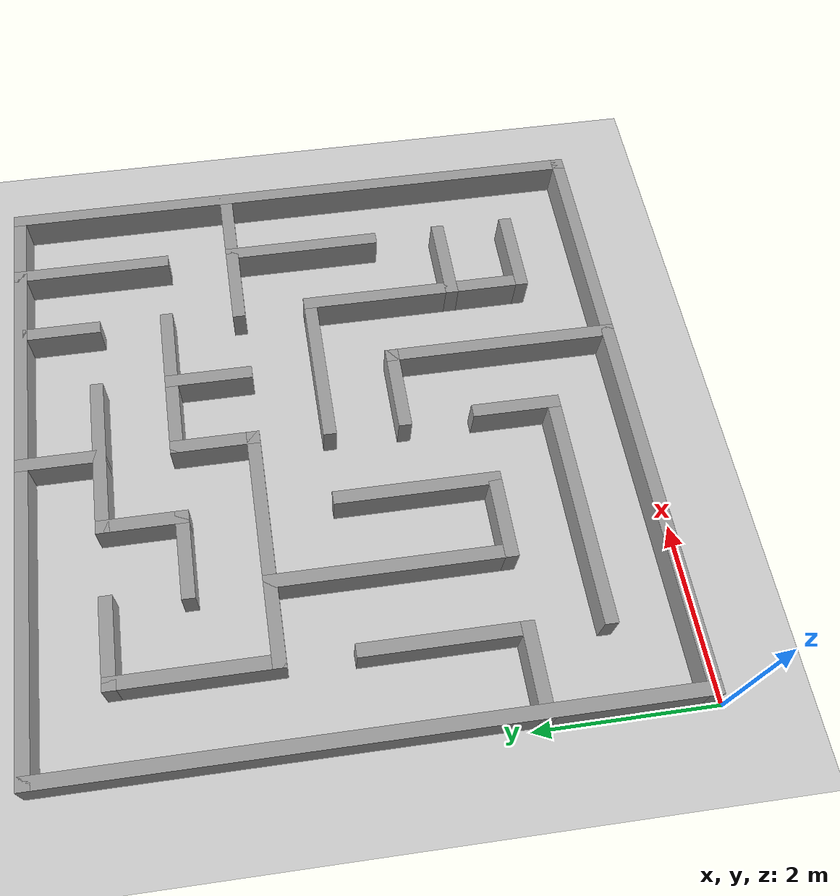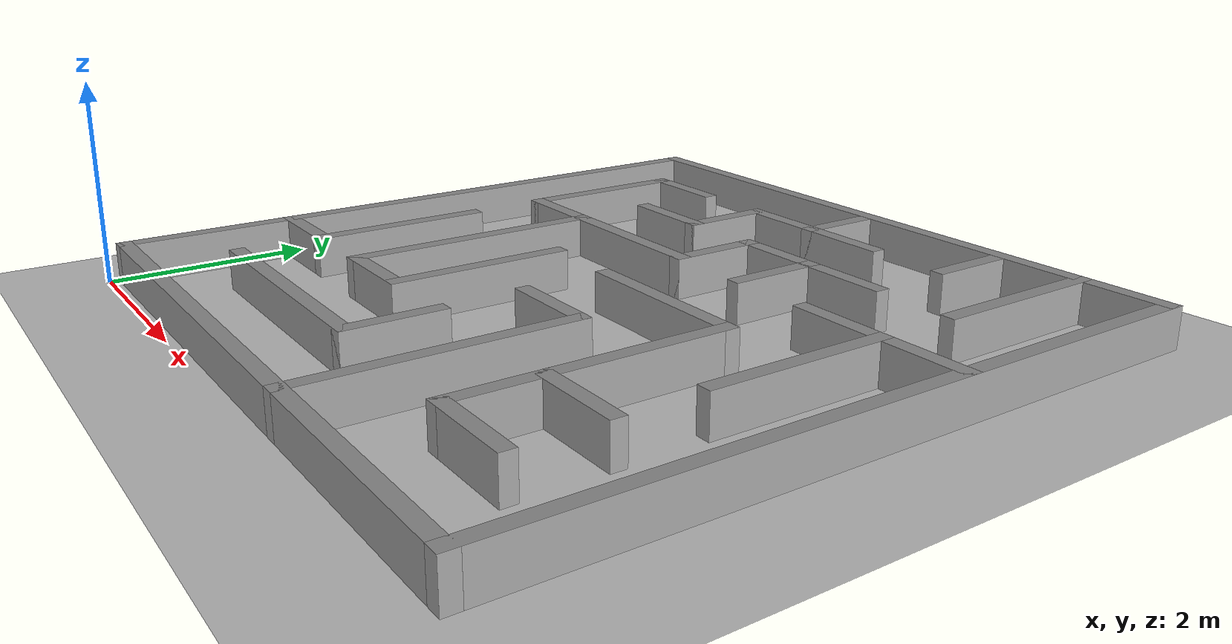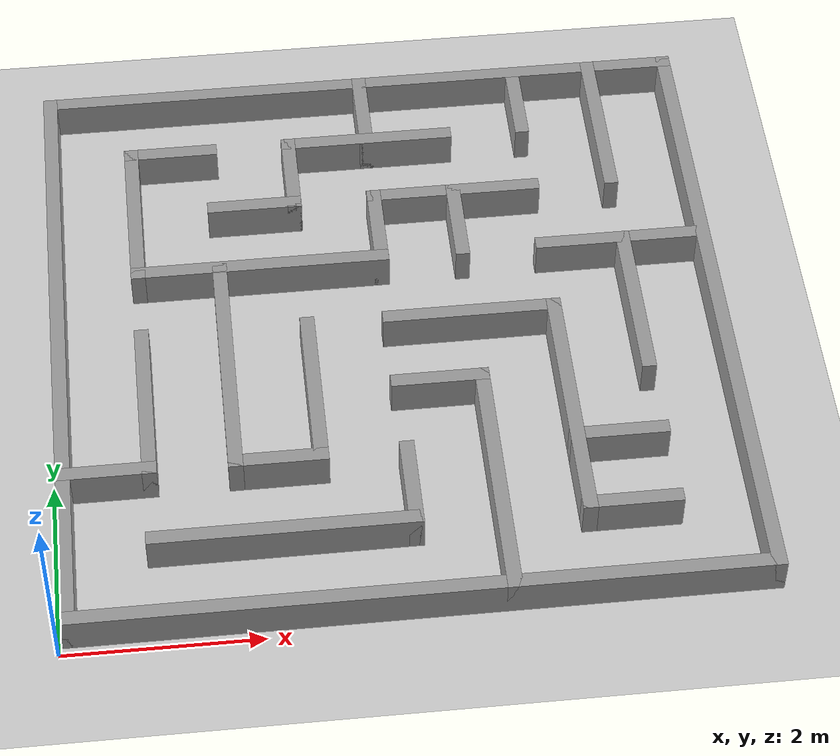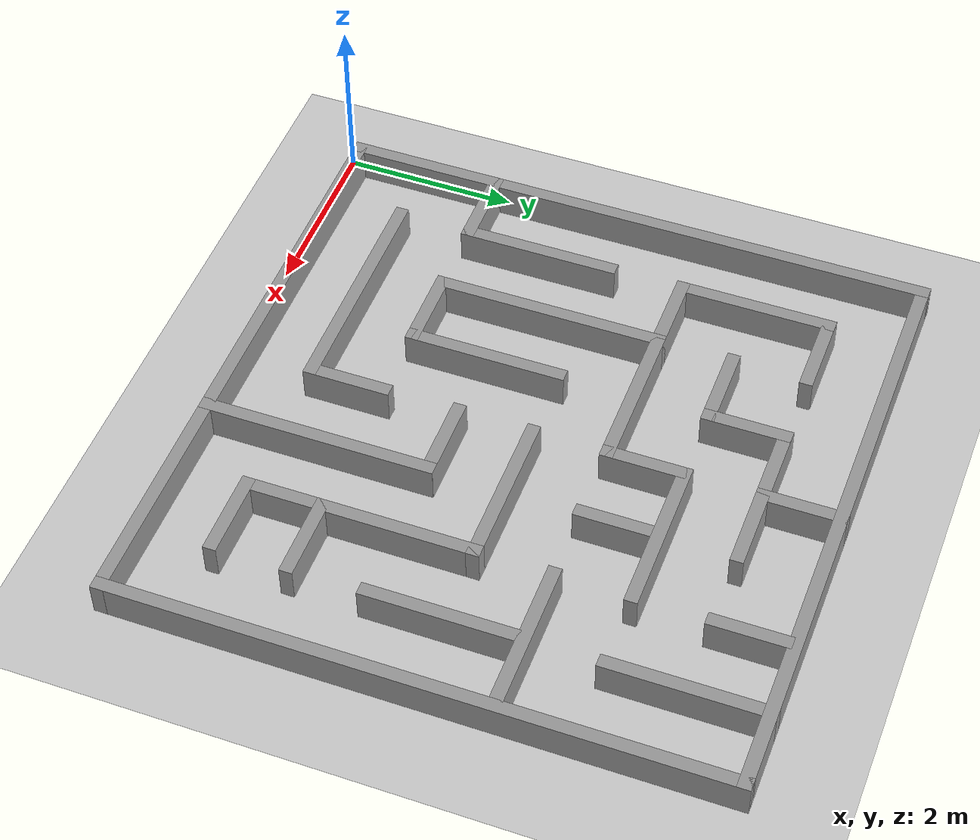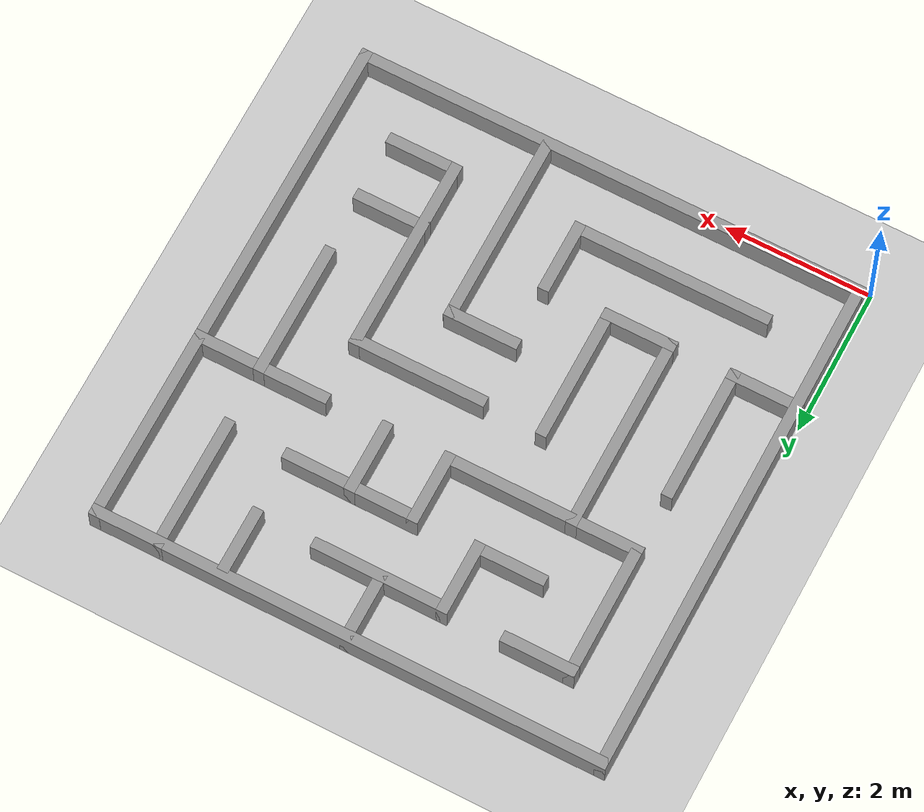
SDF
<sdf version="1.7">
 <world name="default">
  <scene><ambient>0.4 0.4 0.4 1</ambient><background>0.7 0.7 0.7 1</background><shadows>1</shadows></scene>
  <light name="sun" type="directional">
   <pose>0 0 10 0 -0 0</pose>
   <diffuse>0.8 0.8 0.8 1</diffuse>
   <specular>0.2 0.2 0.2 1</specular>
   <attenuation>
    <range>1000</range>
    <constant>0.9</constant>
    <linear>0.01</linear>
    <quadratic>0.001</quadratic>
   </attenuation>
   <direction>-0.5 0.1 -0.9</direction>
   <spot><inner_angle>0</inner_angle><outer_angle>0</outer_angle><falloff>0</falloff></spot>
  </light>
  <model name="ground_plane">
   <static>1</static>
   <link name="link">
    <collision name="collision">
     <geometry><plane><normal>0 0 1</normal><size>100 100</size></plane></geometry>
     <surface>
      <contact><collide_bitmask>65535</collide_bitmask></contact>
      <friction><ode><mu>100</mu><mu2>50</mu2></ode></friction>
     </surface>
    </collision>
    <visual name="visual">
     <cast_shadows>0</cast_shadows>
     <geometry><plane><normal>0 0 1</normal><size>100 100</size></plane></geometry>
     <material>
      <script><uri>file://media/materials/scripts/gazebo.material</uri><name>Gazebo/Grey</name></script>
     </material>
    </visual>
   </link>
  </model>
  <physics type="ode">
   <real_time_update_rate>1000</real_time_update_rate>
   <max_step_size>0.001</max_step_size>
   <real_time_factor>1</real_time_factor>
   <ode>
    <solver>
     <type>quick</type>
     <iters>150</iters>
     <precon_iters>0</precon_iters>
     <sor>1.4</sor>
     <use_dynamic_moi_rescaling>1</use_dynamic_moi_rescaling>
    </solver>
    <constraints>
     <cfm>1e-05</cfm>
     <erp>0.2</erp>
     <contact_max_correcting_vel>2000</contact_max_correcting_vel>
     <contact_surface_layer>0.01</contact_surface_layer>
    </constraints>
   </ode>
  </physics>
  <gravity>0 0 -9.8</gravity>
  <magnetic_field>6e-06 2.3e-05 -4.2e-05</magnetic_field>
  <atmosphere type="adiabatic"/>
  <spherical_coordinates>
   <surface_model>EARTH_WGS84</surface_model>
   <latitude_deg>0</latitude_deg>
   <longitude_deg>0</longitude_deg>
   <elevation>0</elevation>
   <heading_deg>0</heading_deg>
  </spherical_coordinates>
  <model name="Map_3">
   <link name="Wall_0">
    <pose>0 3.425 0 0 -0 0</pose>
    <visual name="Wall_0_Visual">
     <pose>0 0 0.2 0 -0 0</pose>
     <geometry><box><size>7 0.15 0.4</size></box></geometry>
     <material>
      <script><uri>file://media/materials/scripts/gazebo.material</uri><name>Gazebo/Grey</name></script>
      <ambient>1 1 1 1</ambient>
      <shader type="pixel"/>
     </material>
     <meta><layer>0</layer></meta>
    </visual>
    <collision name="Wall_0_Collision">
     <pose>0 0 0.2 0 -0 0</pose>
     <geometry><box><size>7 0.15 0.4</size></box></geometry>
     <surface>
      <friction>
       <ode><mu>1</mu><mu2>1</mu2><fdir1>0 0 0</fdir1><slip1>0</slip1><slip2>0</slip2></ode>
       <torsional>
        <coefficient>1</coefficient>
        <patch_radius>0</patch_radius>
        <surface_radius>0</surface_radius>
        <use_patch_radius>1</use_patch_radius>
        <ode><slip>0</slip></ode>
       </torsional>
      </friction>
      <bounce><restitution_coefficient>0</restitution_coefficient><threshold>1e+06</threshold></bounce>
      <contact>
       <collide_without_contact>0</collide_without_contact>
       <collide_without_contact_bitmask>1</collide_without_contact_bitmask>
       <collide_bitmask>1</collide_bitmask>
       <ode>
        <soft_cfm>0</soft_cfm>
        <soft_erp>0.2</soft_erp>
        <kp>1e+13</kp>
        <kd>1</kd>
        <max_vel>0.01</max_vel>
        <min_depth>0</min_depth>
       </ode>
       <bullet>
        <split_impulse>1</split_impulse>
        <split_impulse_penetration_threshold>-0.01</split_impulse_penetration_threshold>
        <soft_cfm>0</soft_cfm>
        <soft_erp>0.2</soft_erp>
        <kp>1e+13</kp>
        <kd>1</kd>
       </bullet>
      </contact>
     </surface>
    </collision>
   </link>
   <link name="Wall_1">
    <pose>3.425 0 0 0 0 -1.5708</pose>
    <visual name="Wall_1_Visual">
     <pose>0 0 0.2 0 -0 0</pose>
     <geometry><box><size>7 0.15 0.4</size></box></geometry>
     <material>
      <script><uri>file://media/materials/scripts/gazebo.material</uri><name>Gazebo/Grey</name></script>
      <ambient>1 1 1 1</ambient>
      <shader type="pixel"/>
     </material>
     <meta><layer>0</layer></meta>
    </visual>
    <collision name="Wall_1_Collision">
     <pose>0 0 0.2 0 -0 0</pose>
     <geometry><box><size>7 0.15 0.4</size></box></geometry>
     <surface>
      <friction>
       <ode><mu>1</mu><mu2>1</mu2><fdir1>0 0 0</fdir1><slip1>0</slip1><slip2>0</slip2></ode>
       <torsional>
        <coefficient>1</coefficient>
        <patch_radius>0</patch_radius>
        <surface_radius>0</surface_radius>
        <use_patch_radius>1</use_patch_radius>
        <ode><slip>0</slip></ode>
       </torsional>
      </friction>
      <bounce><restitution_coefficient>0</restitution_coefficient><threshold>1e+06</threshold></bounce>
      <contact>
       <collide_without_contact>0</collide_without_contact>
       <collide_without_contact_bitmask>1</collide_without_contact_bitmask>
       <collide_bitmask>1</collide_bitmask>
       <ode>
        <soft_cfm>0</soft_cfm>
        <soft_erp>0.2</soft_erp>
        <kp>1e+13</kp>
        <kd>1</kd>
        <max_vel>0.01</max_vel>
        <min_depth>0</min_depth>
       </ode>
       <bullet>
        <split_impulse>1</split_impulse>
        <split_impulse_penetration_threshold>-0.01</split_impulse_penetration_threshold>
        <soft_cfm>0</soft_cfm>
        <soft_erp>0.2</soft_erp>
        <kp>1e+13</kp>
        <kd>1</kd>
       </bullet>
      </contact>
     </surface>
    </collision>
   </link>
   <link name="Wall_11">
    <pose>2.14 -1.712 0 0 -0 3.14159</pose>
    <visual name="Wall_11_Visual">
     <pose>0 0 0.2 0 -0 0</pose>
     <geometry><box><size>1.006 0.15 0.4</size></box></geometry>
     <material>
      <script><uri>file://media/materials/scripts/gazebo.material</uri><name>Gazebo/Grey</name></script>
      <ambient>1 1 1 1</ambient>
      <shader type="pixel"/>
     </material>
     <meta><layer>0</layer></meta>
    </visual>
    <collision name="Wall_11_Collision">
     <pose>0 0 0.2 0 -0 0</pose>
     <geometry><box><size>1.006 0.15 0.4</size></box></geometry>
     <surface>
      <friction>
       <ode><mu>1</mu><mu2>1</mu2><fdir1>0 0 0</fdir1><slip1>0</slip1><slip2>0</slip2></ode>
       <torsional>
        <coefficient>1</coefficient>
        <patch_radius>0</patch_radius>
        <surface_radius>0</surface_radius>
        <use_patch_radius>1</use_patch_radius>
        <ode><slip>0</slip></ode>
       </torsional>
      </friction>
      <bounce><restitution_coefficient>0</restitution_coefficient><threshold>1e+06</threshold></bounce>
      <contact>
       <collide_without_contact>0</collide_without_contact>
       <collide_without_contact_bitmask>1</collide_without_contact_bitmask>
       <collide_bitmask>1</collide_bitmask>
       <ode>
        <soft_cfm>0</soft_cfm>
        <soft_erp>0.2</soft_erp>
        <kp>1e+13</kp>
        <kd>1</kd>
        <max_vel>0.01</max_vel>
        <min_depth>0</min_depth>
       </ode>
       <bullet>
        <split_impulse>1</split_impulse>
        <split_impulse_penetration_threshold>-0.01</split_impulse_penetration_threshold>
        <soft_cfm>0</soft_cfm>
        <soft_erp>0.2</soft_erp>
        <kp>1e+13</kp>
        <kd>1</kd>
       </bullet>
      </contact>
     </surface>
    </collision>
   </link>
   <link name="Wall_13">
    <pose>2.14 -2.568 0 0 -0 3.14159</pose>
    <visual name="Wall_13_Visual">
     <pose>0 0 0.2 0 -0 0</pose>
     <geometry><box><size>1.006 0.15 0.4</size></box></geometry>
     <material>
      <script><uri>file://media/materials/scripts/gazebo.material</uri><name>Gazebo/Grey</name></script>
      <ambient>1 1 1 1</ambient>
      <shader type="pixel"/>
     </material>
     <meta><layer>0</layer></meta>
    </visual>
    <collision name="Wall_13_Collision">
     <pose>0 0 0.2 0 -0 0</pose>
     <geometry><box><size>1.006 0.15 0.4</size></box></geometry>
     <surface>
      <friction>
       <ode><mu>1</mu><mu2>1</mu2><fdir1>0 0 0</fdir1><slip1>0</slip1><slip2>0</slip2></ode>
       <torsional>
        <coefficient>1</coefficient>
        <patch_radius>0</patch_radius>
        <surface_radius>0</surface_radius>
        <use_patch_radius>1</use_patch_radius>
        <ode><slip>0</slip></ode>
       </torsional>
      </friction>
      <bounce><restitution_coefficient>0</restitution_coefficient><threshold>1e+06</threshold></bounce>
      <contact>
       <collide_without_contact>0</collide_without_contact>
       <collide_without_contact_bitmask>1</collide_without_contact_bitmask>
       <collide_bitmask>1</collide_bitmask>
       <ode>
        <soft_cfm>0</soft_cfm>
        <soft_erp>0.2</soft_erp>
        <kp>1e+13</kp>
        <kd>1</kd>
        <max_vel>0.01</max_vel>
        <min_depth>0</min_depth>
       </ode>
       <bullet>
        <split_impulse>1</split_impulse>
        <split_impulse_penetration_threshold>-0.01</split_impulse_penetration_threshold>
        <soft_cfm>0</soft_cfm>
        <soft_erp>0.2</soft_erp>
        <kp>1e+13</kp>
        <kd>1</kd>
       </bullet>
      </contact>
     </surface>
    </collision>
   </link>
   <link name="Wall_15">
    <pose>1.712 -1.284 0 0 -0 1.5708</pose>
    <visual name="Wall_15_Visual">
     <pose>0 0 0.2 0 -0 0</pose>
     <geometry><box><size>2.718 0.15 0.4</size></box></geometry>
     <material>
      <script><uri>file://media/materials/scripts/gazebo.material</uri><name>Gazebo/Grey</name></script>
      <ambient>1 1 1 1</ambient>
      <shader type="pixel"/>
     </material>
     <meta><layer>0</layer></meta>
    </visual>
    <collision name="Wall_15_Collision">
     <pose>0 0 0.2 0 -0 0</pose>
     <geometry><box><size>2.718 0.15 0.4</size></box></geometry>
     <surface>
      <friction>
       <ode><mu>1</mu><mu2>1</mu2><fdir1>0 0 0</fdir1><slip1>0</slip1><slip2>0</slip2></ode>
       <torsional>
        <coefficient>1</coefficient>
        <patch_radius>0</patch_radius>
        <surface_radius>0</surface_radius>
        <use_patch_radius>1</use_patch_radius>
        <ode><slip>0</slip></ode>
       </torsional>
      </friction>
      <bounce><restitution_coefficient>0</restitution_coefficient><threshold>1e+06</threshold></bounce>
      <contact>
       <collide_without_contact>0</collide_without_contact>
       <collide_without_contact_bitmask>1</collide_without_contact_bitmask>
       <collide_bitmask>1</collide_bitmask>
       <ode>
        <soft_cfm>0</soft_cfm>
        <soft_erp>0.2</soft_erp>
        <kp>1e+13</kp>
        <kd>1</kd>
        <max_vel>0.01</max_vel>
        <min_depth>0</min_depth>
       </ode>
       <bullet>
        <split_impulse>1</split_impulse>
        <split_impulse_penetration_threshold>-0.01</split_impulse_penetration_threshold>
        <soft_cfm>0</soft_cfm>
        <soft_erp>0.2</soft_erp>
        <kp>1e+13</kp>
        <kd>1</kd>
       </bullet>
      </contact>
     </surface>
    </collision>
   </link>
   <link name="Wall_17">
    <pose>0.856 0 0 0 -0 3.14159</pose>
    <visual name="Wall_17_Visual">
     <pose>0 0 0.2 0 -0 0</pose>
     <geometry><box><size>1.862 0.15 0.4</size></box></geometry>
     <material>
      <script><uri>file://media/materials/scripts/gazebo.material</uri><name>Gazebo/Grey</name></script>
      <ambient>1 1 1 1</ambient>
      <shader type="pixel"/>
     </material>
     <meta><layer>0</layer></meta>
    </visual>
    <collision name="Wall_17_Collision">
     <pose>0 0 0.2 0 -0 0</pose>
     <geometry><box><size>1.862 0.15 0.4</size></box></geometry>
     <surface>
      <friction>
       <ode><mu>1</mu><mu2>1</mu2><fdir1>0 0 0</fdir1><slip1>0</slip1><slip2>0</slip2></ode>
       <torsional>
        <coefficient>1</coefficient>
        <patch_radius>0</patch_radius>
        <surface_radius>0</surface_radius>
        <use_patch_radius>1</use_patch_radius>
        <ode><slip>0</slip></ode>
       </torsional>
      </friction>
      <bounce><restitution_coefficient>0</restitution_coefficient><threshold>1e+06</threshold></bounce>
      <contact>
       <collide_without_contact>0</collide_without_contact>
       <collide_without_contact_bitmask>1</collide_without_contact_bitmask>
       <collide_bitmask>1</collide_bitmask>
       <ode>
        <soft_cfm>0</soft_cfm>
        <soft_erp>0.2</soft_erp>
        <kp>1e+13</kp>
        <kd>1</kd>
        <max_vel>0.01</max_vel>
        <min_depth>0</min_depth>
       </ode>
       <bullet>
        <split_impulse>1</split_impulse>
        <split_impulse_penetration_threshold>-0.01</split_impulse_penetration_threshold>
        <soft_cfm>0</soft_cfm>
        <soft_erp>0.2</soft_erp>
        <kp>1e+13</kp>
        <kd>1</kd>
       </bullet>
      </contact>
     </surface>
    </collision>
   </link>
   <link name="Wall_19">
    <pose>0.856 -2.1405 0 0 -0 1.5708</pose>
    <visual name="Wall_19_Visual">
     <pose>0 0 0.2 0 -0 0</pose>
     <geometry><box><size>2.719 0.15 0.4</size></box></geometry>
     <material>
      <script><uri>file://media/materials/scripts/gazebo.material</uri><name>Gazebo/Grey</name></script>
      <ambient>1 1 1 1</ambient>
      <shader type="pixel"/>
     </material>
     <meta><layer>0</layer></meta>
    </visual>
    <collision name="Wall_19_Collision">
     <pose>0 0 0.2 0 -0 0</pose>
     <geometry><box><size>2.719 0.15 0.4</size></box></geometry>
     <surface>
      <friction>
       <ode><mu>1</mu><mu2>1</mu2><fdir1>0 0 0</fdir1><slip1>0</slip1><slip2>0</slip2></ode>
       <torsional>
        <coefficient>1</coefficient>
        <patch_radius>0</patch_radius>
        <surface_radius>0</surface_radius>
        <use_patch_radius>1</use_patch_radius>
        <ode><slip>0</slip></ode>
       </torsional>
      </friction>
      <bounce><restitution_coefficient>0</restitution_coefficient><threshold>1e+06</threshold></bounce>
      <contact>
       <collide_without_contact>0</collide_without_contact>
       <collide_without_contact_bitmask>1</collide_without_contact_bitmask>
       <collide_bitmask>1</collide_bitmask>
       <ode>
        <soft_cfm>0</soft_cfm>
        <soft_erp>0.2</soft_erp>
        <kp>1e+13</kp>
        <kd>1</kd>
        <max_vel>0.01</max_vel>
        <min_depth>0</min_depth>
       </ode>
       <bullet>
        <split_impulse>1</split_impulse>
        <split_impulse_penetration_threshold>-0.01</split_impulse_penetration_threshold>
        <soft_cfm>0</soft_cfm>
        <soft_erp>0.2</soft_erp>
        <kp>1e+13</kp>
        <kd>1</kd>
       </bullet>
      </contact>
     </surface>
    </collision>
   </link>
   <link name="Wall_21">
    <pose>0.42594 -0.85521 0 0 -0 3.14159</pose>
    <inertial>
     <inertia><ixx>0</ixx><ixy>0</ixy><ixz>0</ixz><iyy>0</iyy><iyz>0</iyz><izz>0</izz></inertia>
     <mass>0</mass>
    </inertial>
    <visual name="Wall_21_Visual">
     <pose>0 0 0.2 0 -0 0</pose>
     <geometry><box><size>1.0077 0.15 0.4</size></box></geometry>
     <material>
      <script><uri>file://media/materials/scripts/gazebo.material</uri><name>Gazebo/Grey</name></script>
      <ambient>1 1 1 1</ambient>
      <shader type="pixel"/>
     </material>
     <meta><layer>0</layer></meta>
    </visual>
    <collision name="Wall_21_Collision">
     <pose>0 0 0.2 0 -0 0</pose>
     <geometry><box><size>1.0077 0.15 0.4</size></box></geometry>
     <surface>
      <friction>
       <ode><mu>1</mu><mu2>1</mu2><fdir1>0 0 0</fdir1><slip1>0</slip1><slip2>0</slip2></ode>
       <torsional>
        <coefficient>1</coefficient>
        <patch_radius>0</patch_radius>
        <surface_radius>0</surface_radius>
        <use_patch_radius>1</use_patch_radius>
        <ode><slip>0</slip></ode>
       </torsional>
      </friction>
      <bounce><restitution_coefficient>0</restitution_coefficient><threshold>1e+06</threshold></bounce>
      <contact>
       <collide_without_contact>0</collide_without_contact>
       <collide_without_contact_bitmask>1</collide_without_contact_bitmask>
       <collide_bitmask>1</collide_bitmask>
       <ode>
        <soft_cfm>0</soft_cfm>
        <soft_erp>0.2</soft_erp>
        <kp>1e+13</kp>
        <kd>1</kd>
        <max_vel>0.01</max_vel>
        <min_depth>0</min_depth>
       </ode>
       <bullet>
        <split_impulse>1</split_impulse>
        <split_impulse_penetration_threshold>-0.01</split_impulse_penetration_threshold>
        <soft_cfm>0</soft_cfm>
        <soft_erp>0.2</soft_erp>
        <kp>1e+13</kp>
        <kd>1</kd>
       </bullet>
      </contact>
     </surface>
    </collision>
   </link>
   <link name="Wall_23">
    <pose>-0.856 -0.856 0 0 -0 1.5708</pose>
    <visual name="Wall_23_Visual">
     <pose>0 0 0.2 0 -0 0</pose>
     <geometry><box><size>1.862 0.15 0.4</size></box></geometry>
     <material>
      <script><uri>file://media/materials/scripts/gazebo.material</uri><name>Gazebo/Grey</name></script>
      <ambient>1 1 1 1</ambient>
      <shader type="pixel"/>
     </material>
     <meta><layer>0</layer></meta>
    </visual>
    <collision name="Wall_23_Collision">
     <pose>0 0 0.2 0 -0 0</pose>
     <geometry><box><size>1.862 0.15 0.4</size></box></geometry>
     <surface>
      <friction>
       <ode><mu>1</mu><mu2>1</mu2><fdir1>0 0 0</fdir1><slip1>0</slip1><slip2>0</slip2></ode>
       <torsional>
        <coefficient>1</coefficient>
        <patch_radius>0</patch_radius>
        <surface_radius>0</surface_radius>
        <use_patch_radius>1</use_patch_radius>
        <ode><slip>0</slip></ode>
       </torsional>
      </friction>
      <bounce><restitution_coefficient>0</restitution_coefficient><threshold>1e+06</threshold></bounce>
      <contact>
       <collide_without_contact>0</collide_without_contact>
       <collide_without_contact_bitmask>1</collide_without_contact_bitmask>
       <collide_bitmask>1</collide_bitmask>
       <ode>
        <soft_cfm>0</soft_cfm>
        <soft_erp>0.2</soft_erp>
        <kp>1e+13</kp>
        <kd>1</kd>
        <max_vel>0.01</max_vel>
        <min_depth>0</min_depth>
       </ode>
       <bullet>
        <split_impulse>1</split_impulse>
        <split_impulse_penetration_threshold>-0.01</split_impulse_penetration_threshold>
        <soft_cfm>0</soft_cfm>
        <soft_erp>0.2</soft_erp>
        <kp>1e+13</kp>
        <kd>1</kd>
       </bullet>
      </contact>
     </surface>
    </collision>
   </link>
   <link name="Wall_25">
    <pose>-1.284 -1.712 0 0 -0 3.14159</pose>
    <visual name="Wall_25_Visual">
     <pose>0 0 0.2 0 -0 0</pose>
     <geometry><box><size>1.006 0.15 0.4</size></box></geometry>
     <material>
      <script><uri>file://media/materials/scripts/gazebo.material</uri><name>Gazebo/Grey</name></script>
      <ambient>1 1 1 1</ambient>
      <shader type="pixel"/>
     </material>
     <meta><layer>0</layer></meta>
    </visual>
    <collision name="Wall_25_Collision">
     <pose>0 0 0.2 0 -0 0</pose>
     <geometry><box><size>1.006 0.15 0.4</size></box></geometry>
     <surface>
      <friction>
       <ode><mu>1</mu><mu2>1</mu2><fdir1>0 0 0</fdir1><slip1>0</slip1><slip2>0</slip2></ode>
       <torsional>
        <coefficient>1</coefficient>
        <patch_radius>0</patch_radius>
        <surface_radius>0</surface_radius>
        <use_patch_radius>1</use_patch_radius>
        <ode><slip>0</slip></ode>
       </torsional>
      </friction>
      <bounce><restitution_coefficient>0</restitution_coefficient><threshold>1e+06</threshold></bounce>
      <contact>
       <collide_without_contact>0</collide_without_contact>
       <collide_without_contact_bitmask>1</collide_without_contact_bitmask>
       <collide_bitmask>1</collide_bitmask>
       <ode>
        <soft_cfm>0</soft_cfm>
        <soft_erp>0.2</soft_erp>
        <kp>1e+13</kp>
        <kd>1</kd>
        <max_vel>0.01</max_vel>
        <min_depth>0</min_depth>
       </ode>
       <bullet>
        <split_impulse>1</split_impulse>
        <split_impulse_penetration_threshold>-0.01</split_impulse_penetration_threshold>
        <soft_cfm>0</soft_cfm>
        <soft_erp>0.2</soft_erp>
        <kp>1e+13</kp>
        <kd>1</kd>
       </bullet>
      </contact>
     </surface>
    </collision>
   </link>
   <link name="Wall_27">
    <pose>-1.712 -0.428 0 0 -0 1.5708</pose>
    <visual name="Wall_27_Visual">
     <pose>0 0 0.2 0 -0 0</pose>
     <geometry><box><size>2.718 0.15 0.4</size></box></geometry>
     <material>
      <script><uri>file://media/materials/scripts/gazebo.material</uri><name>Gazebo/Grey</name></script>
      <ambient>1 1 1 1</ambient>
      <shader type="pixel"/>
     </material>
     <meta><layer>0</layer></meta>
    </visual>
    <collision name="Wall_27_Collision">
     <pose>0 0 0.2 0 -0 0</pose>
     <geometry><box><size>2.718 0.15 0.4</size></box></geometry>
     <surface>
      <friction>
       <ode><mu>1</mu><mu2>1</mu2><fdir1>0 0 0</fdir1><slip1>0</slip1><slip2>0</slip2></ode>
       <torsional>
        <coefficient>1</coefficient>
        <patch_radius>0</patch_radius>
        <surface_radius>0</surface_radius>
        <use_patch_radius>1</use_patch_radius>
        <ode><slip>0</slip></ode>
       </torsional>
      </friction>
      <bounce><restitution_coefficient>0</restitution_coefficient><threshold>1e+06</threshold></bounce>
      <contact>
       <collide_without_contact>0</collide_without_contact>
       <collide_without_contact_bitmask>1</collide_without_contact_bitmask>
       <collide_bitmask>1</collide_bitmask>
       <ode>
        <soft_cfm>0</soft_cfm>
        <soft_erp>0.2</soft_erp>
        <kp>1e+13</kp>
        <kd>1</kd>
        <max_vel>0.01</max_vel>
        <min_depth>0</min_depth>
       </ode>
       <bullet>
        <split_impulse>1</split_impulse>
        <split_impulse_penetration_threshold>-0.01</split_impulse_penetration_threshold>
        <soft_cfm>0</soft_cfm>
        <soft_erp>0.2</soft_erp>
        <kp>1e+13</kp>
        <kd>1</kd>
       </bullet>
      </contact>
     </surface>
    </collision>
   </link>
   <link name="Wall_29">
    <pose>-1.284 0.856 0 0 -0 0</pose>
    <visual name="Wall_29_Visual">
     <pose>0 0 0.2 0 -0 0</pose>
     <geometry><box><size>2.7177 0.15 0.4</size></box></geometry>
     <material>
      <script><uri>file://media/materials/scripts/gazebo.material</uri><name>Gazebo/Grey</name></script>
      <ambient>1 1 1 1</ambient>
      <shader type="pixel"/>
     </material>
     <meta><layer>0</layer></meta>
    </visual>
    <collision name="Wall_29_Collision">
     <pose>0 0 0.2 0 -0 0</pose>
     <geometry><box><size>2.7177 0.15 0.4</size></box></geometry>
     <surface>
      <friction>
       <ode><mu>1</mu><mu2>1</mu2><fdir1>0 0 0</fdir1><slip1>0</slip1><slip2>0</slip2></ode>
       <torsional>
        <coefficient>1</coefficient>
        <patch_radius>0</patch_radius>
        <surface_radius>0</surface_radius>
        <use_patch_radius>1</use_patch_radius>
        <ode><slip>0</slip></ode>
       </torsional>
      </friction>
      <bounce><restitution_coefficient>0</restitution_coefficient><threshold>1e+06</threshold></bounce>
      <contact>
       <collide_without_contact>0</collide_without_contact>
       <collide_without_contact_bitmask>1</collide_without_contact_bitmask>
       <collide_bitmask>1</collide_bitmask>
       <ode>
        <soft_cfm>0</soft_cfm>
        <soft_erp>0.2</soft_erp>
        <kp>1e+13</kp>
        <kd>1</kd>
        <max_vel>0.01</max_vel>
        <min_depth>0</min_depth>
       </ode>
       <bullet>
        <split_impulse>1</split_impulse>
        <split_impulse_penetration_threshold>-0.01</split_impulse_penetration_threshold>
        <soft_cfm>0</soft_cfm>
        <soft_erp>0.2</soft_erp>
        <kp>1e+13</kp>
        <kd>1</kd>
       </bullet>
      </contact>
     </surface>
    </collision>
   </link>
   <link name="Wall_3">
    <pose>-3.425 0 0 0 -0 1.5708</pose>
    <visual name="Wall_3_Visual">
     <pose>0 0 0.2 0 -0 0</pose>
     <geometry><box><size>7 0.15 0.4</size></box></geometry>
     <material>
      <script><uri>file://media/materials/scripts/gazebo.material</uri><name>Gazebo/Grey</name></script>
      <ambient>1 1 1 1</ambient>
      <shader type="pixel"/>
     </material>
     <meta><layer>0</layer></meta>
    </visual>
    <collision name="Wall_3_Collision">
     <pose>0 0 0.2 0 -0 0</pose>
     <geometry><box><size>7 0.15 0.4</size></box></geometry>
     <surface>
      <friction>
       <ode><mu>1</mu><mu2>1</mu2><fdir1>0 0 0</fdir1><slip1>0</slip1><slip2>0</slip2></ode>
       <torsional>
        <coefficient>1</coefficient>
        <patch_radius>0</patch_radius>
        <surface_radius>0</surface_radius>
        <use_patch_radius>1</use_patch_radius>
        <ode><slip>0</slip></ode>
       </torsional>
      </friction>
      <bounce><restitution_coefficient>0</restitution_coefficient><threshold>1e+06</threshold></bounce>
      <contact>
       <collide_without_contact>0</collide_without_contact>
       <collide_without_contact_bitmask>1</collide_without_contact_bitmask>
       <collide_bitmask>1</collide_bitmask>
       <ode>
        <soft_cfm>0</soft_cfm>
        <soft_erp>0.2</soft_erp>
        <kp>1e+13</kp>
        <kd>1</kd>
        <max_vel>0.01</max_vel>
        <min_depth>0</min_depth>
       </ode>
       <bullet>
        <split_impulse>1</split_impulse>
        <split_impulse_penetration_threshold>-0.01</split_impulse_penetration_threshold>
        <soft_cfm>0</soft_cfm>
        <soft_erp>0.2</soft_erp>
        <kp>1e+13</kp>
        <kd>1</kd>
       </bullet>
      </contact>
     </surface>
    </collision>
   </link>
   <link name="Wall_33">
    <pose>-2.14 2.568 0 0 -0 0</pose>
    <visual name="Wall_33_Visual">
     <pose>0 0 0.2 0 -0 0</pose>
     <geometry><box><size>1.006 0.15 0.4</size></box></geometry>
     <material>
      <script><uri>file://media/materials/scripts/gazebo.material</uri><name>Gazebo/Grey</name></script>
      <ambient>1 1 1 1</ambient>
      <shader type="pixel"/>
     </material>
     <meta><layer>0</layer></meta>
    </visual>
    <collision name="Wall_33_Collision">
     <pose>0 0 0.2 0 -0 0</pose>
     <geometry><box><size>1.006 0.15 0.4</size></box></geometry>
     <surface>
      <friction>
       <ode><mu>1</mu><mu2>1</mu2><fdir1>0 0 0</fdir1><slip1>0</slip1><slip2>0</slip2></ode>
       <torsional>
        <coefficient>1</coefficient>
        <patch_radius>0</patch_radius>
        <surface_radius>0</surface_radius>
        <use_patch_radius>1</use_patch_radius>
        <ode><slip>0</slip></ode>
       </torsional>
      </friction>
      <bounce><restitution_coefficient>0</restitution_coefficient><threshold>1e+06</threshold></bounce>
      <contact>
       <collide_without_contact>0</collide_without_contact>
       <collide_without_contact_bitmask>1</collide_without_contact_bitmask>
       <collide_bitmask>1</collide_bitmask>
       <ode>
        <soft_cfm>0</soft_cfm>
        <soft_erp>0.2</soft_erp>
        <kp>1e+13</kp>
        <kd>1</kd>
        <max_vel>0.01</max_vel>
        <min_depth>0</min_depth>
       </ode>
       <bullet>
        <split_impulse>1</split_impulse>
        <split_impulse_penetration_threshold>-0.01</split_impulse_penetration_threshold>
        <soft_cfm>0</soft_cfm>
        <soft_erp>0.2</soft_erp>
        <kp>1e+13</kp>
        <kd>1</kd>
       </bullet>
      </contact>
     </surface>
    </collision>
   </link>
   <link name="Wall_35">
    <pose>-1.284 1.712 0 0 -0 0</pose>
    <visual name="Wall_35_Visual">
     <pose>0 0 0.2 0 -0 0</pose>
     <geometry><box><size>1.006 0.15 0.4</size></box></geometry>
     <material>
      <script><uri>file://media/materials/scripts/gazebo.material</uri><name>Gazebo/Grey</name></script>
      <ambient>1 1 1 1</ambient>
      <shader type="pixel"/>
     </material>
     <meta><layer>0</layer></meta>
    </visual>
    <collision name="Wall_35_Collision">
     <pose>0 0 0.2 0 -0 0</pose>
     <geometry><box><size>1.006 0.15 0.4</size></box></geometry>
     <surface>
      <friction>
       <ode><mu>1</mu><mu2>1</mu2><fdir1>0 0 0</fdir1><slip1>0</slip1><slip2>0</slip2></ode>
       <torsional>
        <coefficient>1</coefficient>
        <patch_radius>0</patch_radius>
        <surface_radius>0</surface_radius>
        <use_patch_radius>1</use_patch_radius>
        <ode><slip>0</slip></ode>
       </torsional>
      </friction>
      <bounce><restitution_coefficient>0</restitution_coefficient><threshold>1e+06</threshold></bounce>
      <contact>
       <collide_without_contact>0</collide_without_contact>
       <collide_without_contact_bitmask>1</collide_without_contact_bitmask>
       <collide_bitmask>1</collide_bitmask>
       <ode>
        <soft_cfm>0</soft_cfm>
        <soft_erp>0.2</soft_erp>
        <kp>1e+13</kp>
        <kd>1</kd>
        <max_vel>0.01</max_vel>
        <min_depth>0</min_depth>
       </ode>
       <bullet>
        <split_impulse>1</split_impulse>
        <split_impulse_penetration_threshold>-0.01</split_impulse_penetration_threshold>
        <soft_cfm>0</soft_cfm>
        <soft_erp>0.2</soft_erp>
        <kp>1e+13</kp>
        <kd>1</kd>
       </bullet>
      </contact>
     </surface>
    </collision>
   </link>
   <link name="Wall_37">
    <pose>-2.568 1.712 0 0 0 -1.5708</pose>
    <visual name="Wall_37_Visual">
     <pose>0 0 0.2 0 -0 0</pose>
     <geometry><box><size>1.862 0.15 0.4</size></box></geometry>
     <material>
      <script><uri>file://media/materials/scripts/gazebo.material</uri><name>Gazebo/Grey</name></script>
      <ambient>1 1 1 1</ambient>
      <shader type="pixel"/>
     </material>
     <meta><layer>0</layer></meta>
    </visual>
    <collision name="Wall_37_Collision">
     <pose>0 0 0.2 0 -0 0</pose>
     <geometry><box><size>1.862 0.15 0.4</size></box></geometry>
     <surface>
      <friction>
       <ode><mu>1</mu><mu2>1</mu2><fdir1>0 0 0</fdir1><slip1>0</slip1><slip2>0</slip2></ode>
       <torsional>
        <coefficient>1</coefficient>
        <patch_radius>0</patch_radius>
        <surface_radius>0</surface_radius>
        <use_patch_radius>1</use_patch_radius>
        <ode><slip>0</slip></ode>
       </torsional>
      </friction>
      <bounce><restitution_coefficient>0</restitution_coefficient><threshold>1e+06</threshold></bounce>
      <contact>
       <collide_without_contact>0</collide_without_contact>
       <collide_without_contact_bitmask>1</collide_without_contact_bitmask>
       <collide_bitmask>1</collide_bitmask>
       <ode>
        <soft_cfm>0</soft_cfm>
        <soft_erp>0.2</soft_erp>
        <kp>1e+13</kp>
        <kd>1</kd>
        <max_vel>0.01</max_vel>
        <min_depth>0</min_depth>
       </ode>
       <bullet>
        <split_impulse>1</split_impulse>
        <split_impulse_penetration_threshold>-0.01</split_impulse_penetration_threshold>
        <soft_cfm>0</soft_cfm>
        <soft_erp>0.2</soft_erp>
        <kp>1e+13</kp>
        <kd>1</kd>
       </bullet>
      </contact>
     </surface>
    </collision>
   </link>
   <link name="Wall_39">
    <pose>-0.856 2.14 0 0 -0 1.5708</pose>
    <visual name="Wall_39_Visual">
     <pose>0 0 0.2 0 -0 0</pose>
     <geometry><box><size>1.006 0.15 0.4</size></box></geometry>
     <material>
      <script><uri>file://media/materials/scripts/gazebo.material</uri><name>Gazebo/Grey</name></script>
      <ambient>1 1 1 1</ambient>
      <shader type="pixel"/>
     </material>
     <meta><layer>0</layer></meta>
    </visual>
    <collision name="Wall_39_Collision">
     <pose>0 0 0.2 0 -0 0</pose>
     <geometry><box><size>1.006 0.15 0.4</size></box></geometry>
     <surface>
      <friction>
       <ode><mu>1</mu><mu2>1</mu2><fdir1>0 0 0</fdir1><slip1>0</slip1><slip2>0</slip2></ode>
       <torsional>
        <coefficient>1</coefficient>
        <patch_radius>0</patch_radius>
        <surface_radius>0</surface_radius>
        <use_patch_radius>1</use_patch_radius>
        <ode><slip>0</slip></ode>
       </torsional>
      </friction>
      <bounce><restitution_coefficient>0</restitution_coefficient><threshold>1e+06</threshold></bounce>
      <contact>
       <collide_without_contact>0</collide_without_contact>
       <collide_without_contact_bitmask>1</collide_without_contact_bitmask>
       <collide_bitmask>1</collide_bitmask>
       <ode>
        <soft_cfm>0</soft_cfm>
        <soft_erp>0.2</soft_erp>
        <kp>1e+13</kp>
        <kd>1</kd>
        <max_vel>0.01</max_vel>
        <min_depth>0</min_depth>
       </ode>
       <bullet>
        <split_impulse>1</split_impulse>
        <split_impulse_penetration_threshold>-0.01</split_impulse_penetration_threshold>
        <soft_cfm>0</soft_cfm>
        <soft_erp>0.2</soft_erp>
        <kp>1e+13</kp>
        <kd>1</kd>
       </bullet>
      </contact>
     </surface>
    </collision>
   </link>
   <link name="Wall_41">
    <pose>0 2.568 0 0 -0 0</pose>
    <visual name="Wall_41_Visual">
     <pose>0 0 0.2 0 -0 0</pose>
     <geometry><box><size>1.862 0.15 0.4</size></box></geometry>
     <material>
      <script><uri>file://media/materials/scripts/gazebo.material</uri><name>Gazebo/Grey</name></script>
      <ambient>1 1 1 1</ambient>
      <shader type="pixel"/>
     </material>
     <meta><layer>0</layer></meta>
    </visual>
    <collision name="Wall_41_Collision">
     <pose>0 0 0.2 0 -0 0</pose>
     <geometry><box><size>1.862 0.15 0.4</size></box></geometry>
     <surface>
      <friction>
       <ode><mu>1</mu><mu2>1</mu2><fdir1>0 0 0</fdir1><slip1>0</slip1><slip2>0</slip2></ode>
       <torsional>
        <coefficient>1</coefficient>
        <patch_radius>0</patch_radius>
        <surface_radius>0</surface_radius>
        <use_patch_radius>1</use_patch_radius>
        <ode><slip>0</slip></ode>
       </torsional>
      </friction>
      <bounce><restitution_coefficient>0</restitution_coefficient><threshold>1e+06</threshold></bounce>
      <contact>
       <collide_without_contact>0</collide_without_contact>
       <collide_without_contact_bitmask>1</collide_without_contact_bitmask>
       <collide_bitmask>1</collide_bitmask>
       <ode>
        <soft_cfm>0</soft_cfm>
        <soft_erp>0.2</soft_erp>
        <kp>1e+13</kp>
        <kd>1</kd>
        <max_vel>0.01</max_vel>
        <min_depth>0</min_depth>
       </ode>
       <bullet>
        <split_impulse>1</split_impulse>
        <split_impulse_penetration_threshold>-0.01</split_impulse_penetration_threshold>
        <soft_cfm>0</soft_cfm>
        <soft_erp>0.2</soft_erp>
        <kp>1e+13</kp>
        <kd>1</kd>
       </bullet>
      </contact>
     </surface>
    </collision>
   </link>
   <link name="Wall_43">
    <pose>0 2.9965 0 0 -0 1.5708</pose>
    <visual name="Wall_43_Visual">
     <pose>0 0 0.2 0 -0 0</pose>
     <geometry><box><size>1.007 0.15 0.4</size></box></geometry>
     <material>
      <script><uri>file://media/materials/scripts/gazebo.material</uri><name>Gazebo/Grey</name></script>
      <ambient>1 1 1 1</ambient>
      <shader type="pixel"/>
     </material>
     <meta><layer>0</layer></meta>
    </visual>
    <collision name="Wall_43_Collision">
     <pose>0 0 0.2 0 -0 0</pose>
     <geometry><box><size>1.007 0.15 0.4</size></box></geometry>
     <surface>
      <friction>
       <ode><mu>1</mu><mu2>1</mu2><fdir1>0 0 0</fdir1><slip1>0</slip1><slip2>0</slip2></ode>
       <torsional>
        <coefficient>1</coefficient>
        <patch_radius>0</patch_radius>
        <surface_radius>0</surface_radius>
        <use_patch_radius>1</use_patch_radius>
        <ode><slip>0</slip></ode>
       </torsional>
      </friction>
      <bounce><restitution_coefficient>0</restitution_coefficient><threshold>1e+06</threshold></bounce>
      <contact>
       <collide_without_contact>0</collide_without_contact>
       <collide_without_contact_bitmask>1</collide_without_contact_bitmask>
       <collide_bitmask>1</collide_bitmask>
       <ode>
        <soft_cfm>0</soft_cfm>
        <soft_erp>0.2</soft_erp>
        <kp>1e+13</kp>
        <kd>1</kd>
        <max_vel>0.01</max_vel>
        <min_depth>0</min_depth>
       </ode>
       <bullet>
        <split_impulse>1</split_impulse>
        <split_impulse_penetration_threshold>-0.01</split_impulse_penetration_threshold>
        <soft_cfm>0</soft_cfm>
        <soft_erp>0.2</soft_erp>
        <kp>1e+13</kp>
        <kd>1</kd>
       </bullet>
      </contact>
     </surface>
    </collision>
   </link>
   <link name="Wall_45">
    <pose>0 1.284 0 0 -0 1.5708</pose>
    <visual name="Wall_45_Visual">
     <pose>0 0 0.2 0 -0 0</pose>
     <geometry><box><size>1.006 0.15 0.4</size></box></geometry>
     <material>
      <script><uri>file://media/materials/scripts/gazebo.material</uri><name>Gazebo/Grey</name></script>
      <ambient>1 1 1 1</ambient>
      <shader type="pixel"/>
     </material>
     <meta><layer>0</layer></meta>
    </visual>
    <collision name="Wall_45_Collision">
     <pose>0 0 0.2 0 -0 0</pose>
     <geometry><box><size>1.006 0.15 0.4</size></box></geometry>
     <surface>
      <friction>
       <ode><mu>1</mu><mu2>1</mu2><fdir1>0 0 0</fdir1><slip1>0</slip1><slip2>0</slip2></ode>
       <torsional>
        <coefficient>1</coefficient>
        <patch_radius>0</patch_radius>
        <surface_radius>0</surface_radius>
        <use_patch_radius>1</use_patch_radius>
        <ode><slip>0</slip></ode>
       </torsional>
      </friction>
      <bounce><restitution_coefficient>0</restitution_coefficient><threshold>1e+06</threshold></bounce>
      <contact>
       <collide_without_contact>0</collide_without_contact>
       <collide_without_contact_bitmask>1</collide_without_contact_bitmask>
       <collide_bitmask>1</collide_bitmask>
       <ode>
        <soft_cfm>0</soft_cfm>
        <soft_erp>0.2</soft_erp>
        <kp>1e+13</kp>
        <kd>1</kd>
        <max_vel>0.01</max_vel>
        <min_depth>0</min_depth>
       </ode>
       <bullet>
        <split_impulse>1</split_impulse>
        <split_impulse_penetration_threshold>-0.01</split_impulse_penetration_threshold>
        <soft_cfm>0</soft_cfm>
        <soft_erp>0.2</soft_erp>
        <kp>1e+13</kp>
        <kd>1</kd>
       </bullet>
      </contact>
     </surface>
    </collision>
   </link>
   <link name="Wall_47">
    <pose>0.856 1.712 0 0 -0 0</pose>
    <visual name="Wall_47_Visual">
     <pose>0 0 0.2 0 -0 0</pose>
     <geometry><box><size>1.862 0.15 0.4</size></box></geometry>
     <material>
      <script><uri>file://media/materials/scripts/gazebo.material</uri><name>Gazebo/Grey</name></script>
      <ambient>1 1 1 1</ambient>
      <shader type="pixel"/>
     </material>
     <meta><layer>0</layer></meta>
    </visual>
    <collision name="Wall_47_Collision">
     <pose>0 0 0.2 0 -0 0</pose>
     <geometry><box><size>1.862 0.15 0.4</size></box></geometry>
     <surface>
      <friction>
       <ode><mu>1</mu><mu2>1</mu2><fdir1>0 0 0</fdir1><slip1>0</slip1><slip2>0</slip2></ode>
       <torsional>
        <coefficient>1</coefficient>
        <patch_radius>0</patch_radius>
        <surface_radius>0</surface_radius>
        <use_patch_radius>1</use_patch_radius>
        <ode><slip>0</slip></ode>
       </torsional>
      </friction>
      <bounce><restitution_coefficient>0</restitution_coefficient><threshold>1e+06</threshold></bounce>
      <contact>
       <collide_without_contact>0</collide_without_contact>
       <collide_without_contact_bitmask>1</collide_without_contact_bitmask>
       <collide_bitmask>1</collide_bitmask>
       <ode>
        <soft_cfm>0</soft_cfm>
        <soft_erp>0.2</soft_erp>
        <kp>1e+13</kp>
        <kd>1</kd>
        <max_vel>0.01</max_vel>
        <min_depth>0</min_depth>
       </ode>
       <bullet>
        <split_impulse>1</split_impulse>
        <split_impulse_penetration_threshold>-0.01</split_impulse_penetration_threshold>
        <soft_cfm>0</soft_cfm>
        <soft_erp>0.2</soft_erp>
        <kp>1e+13</kp>
        <kd>1</kd>
       </bullet>
      </contact>
     </surface>
    </collision>
   </link>
   <link name="Wall_49">
    <pose>1.712 2.9465 0 0 0 -1.5708</pose>
    <visual name="Wall_49_Visual">
     <pose>0 0 0.2 0 -0 0</pose>
     <geometry><box><size>0.907 0.15 0.4</size></box></geometry>
     <material>
      <script><uri>file://media/materials/scripts/gazebo.material</uri><name>Gazebo/Grey</name></script>
      <ambient>1 1 1 1</ambient>
      <shader type="pixel"/>
     </material>
     <meta><layer>0</layer></meta>
    </visual>
    <collision name="Wall_49_Collision">
     <pose>0 0 0.2 0 -0 0</pose>
     <geometry><box><size>0.907 0.15 0.4</size></box></geometry>
     <surface>
      <friction>
       <ode><mu>1</mu><mu2>1</mu2><fdir1>0 0 0</fdir1><slip1>0</slip1><slip2>0</slip2></ode>
       <torsional>
        <coefficient>1</coefficient>
        <patch_radius>0</patch_radius>
        <surface_radius>0</surface_radius>
        <use_patch_radius>1</use_patch_radius>
        <ode><slip>0</slip></ode>
       </torsional>
      </friction>
      <bounce><restitution_coefficient>0</restitution_coefficient><threshold>1e+06</threshold></bounce>
      <contact>
       <collide_without_contact>0</collide_without_contact>
       <collide_without_contact_bitmask>1</collide_without_contact_bitmask>
       <collide_bitmask>1</collide_bitmask>
       <ode>
        <soft_cfm>0</soft_cfm>
        <soft_erp>0.2</soft_erp>
        <kp>1e+13</kp>
        <kd>1</kd>
        <max_vel>0.01</max_vel>
        <min_depth>0</min_depth>
       </ode>
       <bullet>
        <split_impulse>1</split_impulse>
        <split_impulse_penetration_threshold>-0.01</split_impulse_penetration_threshold>
        <soft_cfm>0</soft_cfm>
        <soft_erp>0.2</soft_erp>
        <kp>1e+13</kp>
        <kd>1</kd>
       </bullet>
      </contact>
     </surface>
    </collision>
   </link>
   <link name="Wall_5">
    <pose>0 -3.425 0 0 -0 0</pose>
    <visual name="Wall_5_Visual">
     <pose>0 0 0.2 0 -0 0</pose>
     <geometry><box><size>7 0.15 0.4</size></box></geometry>
     <material>
      <script><uri>file://media/materials/scripts/gazebo.material</uri><name>Gazebo/Grey</name></script>
      <ambient>1 1 1 1</ambient>
      <shader type="pixel"/>
     </material>
     <meta><layer>0</layer></meta>
    </visual>
    <collision name="Wall_5_Collision">
     <pose>0 0 0.2 0 -0 0</pose>
     <geometry><box><size>7 0.15 0.4</size></box></geometry>
     <surface>
      <friction>
       <ode><mu>1</mu><mu2>1</mu2><fdir1>0 0 0</fdir1><slip1>0</slip1><slip2>0</slip2></ode>
       <torsional>
        <coefficient>1</coefficient>
        <patch_radius>0</patch_radius>
        <surface_radius>0</surface_radius>
        <use_patch_radius>1</use_patch_radius>
        <ode><slip>0</slip></ode>
       </torsional>
      </friction>
      <bounce><restitution_coefficient>0</restitution_coefficient><threshold>1e+06</threshold></bounce>
      <contact>
       <collide_without_contact>0</collide_without_contact>
       <collide_without_contact_bitmask>1</collide_without_contact_bitmask>
       <collide_bitmask>1</collide_bitmask>
       <ode>
        <soft_cfm>0</soft_cfm>
        <soft_erp>0.2</soft_erp>
        <kp>1e+13</kp>
        <kd>1</kd>
        <max_vel>0.01</max_vel>
        <min_depth>0</min_depth>
       </ode>
       <bullet>
        <split_impulse>1</split_impulse>
        <split_impulse_penetration_threshold>-0.01</split_impulse_penetration_threshold>
        <soft_cfm>0</soft_cfm>
        <soft_erp>0.2</soft_erp>
        <kp>1e+13</kp>
        <kd>1</kd>
       </bullet>
      </contact>
     </surface>
    </collision>
   </link>
   <link name="Wall_51">
    <pose>2.568 2.5685 0 0 0 -1.5708</pose>
    <visual name="Wall_51_Visual">
     <pose>0 0 0.2 0 -0 0</pose>
     <geometry><box><size>1.863 0.15 0.4</size></box></geometry>
     <material>
      <script><uri>file://media/materials/scripts/gazebo.material</uri><name>Gazebo/Grey</name></script>
      <ambient>1 1 1 1</ambient>
      <shader type="pixel"/>
     </material>
     <meta><layer>0</layer></meta>
    </visual>
    <collision name="Wall_51_Collision">
     <pose>0 0 0.2 0 -0 0</pose>
     <geometry><box><size>1.863 0.15 0.4</size></box></geometry>
     <surface>
      <friction>
       <ode><mu>1</mu><mu2>1</mu2><fdir1>0 0 0</fdir1><slip1>0</slip1><slip2>0</slip2></ode>
       <torsional>
        <coefficient>1</coefficient>
        <patch_radius>0</patch_radius>
        <surface_radius>0</surface_radius>
        <use_patch_radius>1</use_patch_radius>
        <ode><slip>0</slip></ode>
       </torsional>
      </friction>
      <bounce><restitution_coefficient>0</restitution_coefficient><threshold>1e+06</threshold></bounce>
      <contact>
       <collide_without_contact>0</collide_without_contact>
       <collide_without_contact_bitmask>1</collide_without_contact_bitmask>
       <collide_bitmask>1</collide_bitmask>
       <ode>
        <soft_cfm>0</soft_cfm>
        <soft_erp>0.2</soft_erp>
        <kp>1e+13</kp>
        <kd>1</kd>
        <max_vel>0.01</max_vel>
        <min_depth>0</min_depth>
       </ode>
       <bullet>
        <split_impulse>1</split_impulse>
        <split_impulse_penetration_threshold>-0.01</split_impulse_penetration_threshold>
        <soft_cfm>0</soft_cfm>
        <soft_erp>0.2</soft_erp>
        <kp>1e+13</kp>
        <kd>1</kd>
       </bullet>
      </contact>
     </surface>
    </collision>
   </link>
   <link name="Wall_53">
    <pose>0.856 1.284 0 0 0 -1.5708</pose>
    <visual name="Wall_53_Visual">
     <pose>0 0 0.2 0 -0 0</pose>
     <geometry><box><size>1.006 0.15 0.4</size></box></geometry>
     <material>
      <script><uri>file://media/materials/scripts/gazebo.material</uri><name>Gazebo/Grey</name></script>
      <ambient>1 1 1 1</ambient>
      <shader type="pixel"/>
     </material>
     <meta><layer>0</layer></meta>
    </visual>
    <collision name="Wall_53_Collision">
     <pose>0 0 0.2 0 -0 0</pose>
     <geometry><box><size>1.006 0.15 0.4</size></box></geometry>
     <surface>
      <friction>
       <ode><mu>1</mu><mu2>1</mu2><fdir1>0 0 0</fdir1><slip1>0</slip1><slip2>0</slip2></ode>
       <torsional>
        <coefficient>1</coefficient>
        <patch_radius>0</patch_radius>
        <surface_radius>0</surface_radius>
        <use_patch_radius>1</use_patch_radius>
        <ode><slip>0</slip></ode>
       </torsional>
      </friction>
      <bounce><restitution_coefficient>0</restitution_coefficient><threshold>1e+06</threshold></bounce>
      <contact>
       <collide_without_contact>0</collide_without_contact>
       <collide_without_contact_bitmask>1</collide_without_contact_bitmask>
       <collide_bitmask>1</collide_bitmask>
       <ode>
        <soft_cfm>0</soft_cfm>
        <soft_erp>0.2</soft_erp>
        <kp>1e+13</kp>
        <kd>1</kd>
        <max_vel>0.01</max_vel>
        <min_depth>0</min_depth>
       </ode>
       <bullet>
        <split_impulse>1</split_impulse>
        <split_impulse_penetration_threshold>-0.01</split_impulse_penetration_threshold>
        <soft_cfm>0</soft_cfm>
        <soft_erp>0.2</soft_erp>
        <kp>1e+13</kp>
        <kd>1</kd>
       </bullet>
      </contact>
     </surface>
    </collision>
   </link>
   <link name="Wall_55">
    <pose>-2.9965 -1.712 0 0 -0 0</pose>
    <visual name="Wall_55_Visual">
     <pose>0 0 0.2 0 -0 0</pose>
     <geometry><box><size>1.007 0.15 0.4</size></box></geometry>
     <material>
      <script><uri>file://media/materials/scripts/gazebo.material</uri><name>Gazebo/Grey</name></script>
      <ambient>1 1 1 1</ambient>
      <shader type="pixel"/>
     </material>
     <meta><layer>0</layer></meta>
    </visual>
    <collision name="Wall_55_Collision">
     <pose>0 0 0.2 0 -0 0</pose>
     <geometry><box><size>1.007 0.15 0.4</size></box></geometry>
     <surface>
      <friction>
       <ode><mu>1</mu><mu2>1</mu2><fdir1>0 0 0</fdir1><slip1>0</slip1><slip2>0</slip2></ode>
       <torsional>
        <coefficient>1</coefficient>
        <patch_radius>0</patch_radius>
        <surface_radius>0</surface_radius>
        <use_patch_radius>1</use_patch_radius>
        <ode><slip>0</slip></ode>
       </torsional>
      </friction>
      <bounce><restitution_coefficient>0</restitution_coefficient><threshold>1e+06</threshold></bounce>
      <contact>
       <collide_without_contact>0</collide_without_contact>
       <collide_without_contact_bitmask>1</collide_without_contact_bitmask>
       <collide_bitmask>1</collide_bitmask>
       <ode>
        <soft_cfm>0</soft_cfm>
        <soft_erp>0.2</soft_erp>
        <kp>1e+13</kp>
        <kd>1</kd>
        <max_vel>0.01</max_vel>
        <min_depth>0</min_depth>
       </ode>
       <bullet>
        <split_impulse>1</split_impulse>
        <split_impulse_penetration_threshold>-0.01</split_impulse_penetration_threshold>
        <soft_cfm>0</soft_cfm>
        <soft_erp>0.2</soft_erp>
        <kp>1e+13</kp>
        <kd>1</kd>
       </bullet>
      </contact>
     </surface>
    </collision>
   </link>
   <link name="Wall_57">
    <pose>-2.568 -0.856 0 0 -0 1.5708</pose>
    <visual name="Wall_57_Visual">
     <pose>0 0 0.2 0 -0 0</pose>
     <geometry><box><size>1.862 0.15 0.4</size></box></geometry>
     <material>
      <script><uri>file://media/materials/scripts/gazebo.material</uri><name>Gazebo/Grey</name></script>
      <ambient>1 1 1 1</ambient>
      <shader type="pixel"/>
     </material>
     <meta><layer>0</layer></meta>
    </visual>
    <collision name="Wall_57_Collision">
     <pose>0 0 0.2 0 -0 0</pose>
     <geometry><box><size>1.862 0.15 0.4</size></box></geometry>
     <surface>
      <friction>
       <ode><mu>1</mu><mu2>1</mu2><fdir1>0 0 0</fdir1><slip1>0</slip1><slip2>0</slip2></ode>
       <torsional>
        <coefficient>1</coefficient>
        <patch_radius>0</patch_radius>
        <surface_radius>0</surface_radius>
        <use_patch_radius>1</use_patch_radius>
        <ode><slip>0</slip></ode>
       </torsional>
      </friction>
      <bounce><restitution_coefficient>0</restitution_coefficient><threshold>1e+06</threshold></bounce>
      <contact>
       <collide_without_contact>0</collide_without_contact>
       <collide_without_contact_bitmask>1</collide_without_contact_bitmask>
       <collide_bitmask>1</collide_bitmask>
       <ode>
        <soft_cfm>0</soft_cfm>
        <soft_erp>0.2</soft_erp>
        <kp>1e+13</kp>
        <kd>1</kd>
        <max_vel>0.01</max_vel>
        <min_depth>0</min_depth>
       </ode>
       <bullet>
        <split_impulse>1</split_impulse>
        <split_impulse_penetration_threshold>-0.01</split_impulse_penetration_threshold>
        <soft_cfm>0</soft_cfm>
        <soft_erp>0.2</soft_erp>
        <kp>1e+13</kp>
        <kd>1</kd>
       </bullet>
      </contact>
     </surface>
    </collision>
   </link>
   <link name="Wall_59">
    <pose>-1.284 -2.568 0 0 -0 0</pose>
    <visual name="Wall_59_Visual">
     <pose>0 0 0.2 0 -0 0</pose>
     <geometry><box><size>2.718 0.15 0.4</size></box></geometry>
     <material>
      <script><uri>file://media/materials/scripts/gazebo.material</uri><name>Gazebo/Grey</name></script>
      <ambient>1 1 1 1</ambient>
      <shader type="pixel"/>
     </material>
     <meta><layer>0</layer></meta>
    </visual>
    <collision name="Wall_59_Collision">
     <pose>0 0 0.2 0 -0 0</pose>
     <geometry><box><size>2.718 0.15 0.4</size></box></geometry>
     <surface>
      <friction>
       <ode><mu>1</mu><mu2>1</mu2><fdir1>0 0 0</fdir1><slip1>0</slip1><slip2>0</slip2></ode>
       <torsional>
        <coefficient>1</coefficient>
        <patch_radius>0</patch_radius>
        <surface_radius>0</surface_radius>
        <use_patch_radius>1</use_patch_radius>
        <ode><slip>0</slip></ode>
       </torsional>
      </friction>
      <bounce><restitution_coefficient>0</restitution_coefficient><threshold>1e+06</threshold></bounce>
      <contact>
       <collide_without_contact>0</collide_without_contact>
       <collide_without_contact_bitmask>1</collide_without_contact_bitmask>
       <collide_bitmask>1</collide_bitmask>
       <ode>
        <soft_cfm>0</soft_cfm>
        <soft_erp>0.2</soft_erp>
        <kp>1e+13</kp>
        <kd>1</kd>
        <max_vel>0.01</max_vel>
        <min_depth>0</min_depth>
       </ode>
       <bullet>
        <split_impulse>1</split_impulse>
        <split_impulse_penetration_threshold>-0.01</split_impulse_penetration_threshold>
        <soft_cfm>0</soft_cfm>
        <soft_erp>0.2</soft_erp>
        <kp>1e+13</kp>
        <kd>1</kd>
       </bullet>
      </contact>
     </surface>
    </collision>
   </link>
   <link name="Wall_61">
    <pose>0 -2.14 0 0 -0 1.5708</pose>
    <visual name="Wall_61_Visual">
     <pose>0 0 0.2 0 -0 0</pose>
     <geometry><box><size>1.006 0.15 0.4</size></box></geometry>
     <material>
      <script><uri>file://media/materials/scripts/gazebo.material</uri><name>Gazebo/Grey</name></script>
      <ambient>1 1 1 1</ambient>
      <shader type="pixel"/>
     </material>
     <meta><layer>0</layer></meta>
    </visual>
    <collision name="Wall_61_Collision">
     <pose>0 0 0.2 0 -0 0</pose>
     <geometry><box><size>1.006 0.15 0.4</size></box></geometry>
     <surface>
      <friction>
       <ode><mu>1</mu><mu2>1</mu2><fdir1>0 0 0</fdir1><slip1>0</slip1><slip2>0</slip2></ode>
       <torsional>
        <coefficient>1</coefficient>
        <patch_radius>0</patch_radius>
        <surface_radius>0</surface_radius>
        <use_patch_radius>1</use_patch_radius>
        <ode><slip>0</slip></ode>
       </torsional>
      </friction>
      <bounce><restitution_coefficient>0</restitution_coefficient><threshold>1e+06</threshold></bounce>
      <contact>
       <collide_without_contact>0</collide_without_contact>
       <collide_without_contact_bitmask>1</collide_without_contact_bitmask>
       <collide_bitmask>1</collide_bitmask>
       <ode>
        <soft_cfm>0</soft_cfm>
        <soft_erp>0.2</soft_erp>
        <kp>1e+13</kp>
        <kd>1</kd>
        <max_vel>0.01</max_vel>
        <min_depth>0</min_depth>
       </ode>
       <bullet>
        <split_impulse>1</split_impulse>
        <split_impulse_penetration_threshold>-0.01</split_impulse_penetration_threshold>
        <soft_cfm>0</soft_cfm>
        <soft_erp>0.2</soft_erp>
        <kp>1e+13</kp>
        <kd>1</kd>
       </bullet>
      </contact>
     </surface>
    </collision>
   </link>
   <link name="Wall_7">
    <pose>2.5685 0.856 0 0 -0 3.14159</pose>
    <visual name="Wall_7_Visual">
     <pose>0 0 0.2 0 -0 0</pose>
     <geometry><box><size>1.863 0.15 0.4</size></box></geometry>
     <material>
      <script><uri>file://media/materials/scripts/gazebo.material</uri><name>Gazebo/Grey</name></script>
      <ambient>1 1 1 1</ambient>
      <shader type="pixel"/>
     </material>
     <meta><layer>0</layer></meta>
    </visual>
    <collision name="Wall_7_Collision">
     <pose>0 0 0.2 0 -0 0</pose>
     <geometry><box><size>1.863 0.15 0.4</size></box></geometry>
     <surface>
      <friction>
       <ode><mu>1</mu><mu2>1</mu2><fdir1>0 0 0</fdir1><slip1>0</slip1><slip2>0</slip2></ode>
       <torsional>
        <coefficient>1</coefficient>
        <patch_radius>0</patch_radius>
        <surface_radius>0</surface_radius>
        <use_patch_radius>1</use_patch_radius>
        <ode><slip>0</slip></ode>
       </torsional>
      </friction>
      <bounce><restitution_coefficient>0</restitution_coefficient><threshold>1e+06</threshold></bounce>
      <contact>
       <collide_without_contact>0</collide_without_contact>
       <collide_without_contact_bitmask>1</collide_without_contact_bitmask>
       <collide_bitmask>1</collide_bitmask>
       <ode>
        <soft_cfm>0</soft_cfm>
        <soft_erp>0.2</soft_erp>
        <kp>1e+13</kp>
        <kd>1</kd>
        <max_vel>0.01</max_vel>
        <min_depth>0</min_depth>
       </ode>
       <bullet>
        <split_impulse>1</split_impulse>
        <split_impulse_penetration_threshold>-0.01</split_impulse_penetration_threshold>
        <soft_cfm>0</soft_cfm>
        <soft_erp>0.2</soft_erp>
        <kp>1e+13</kp>
        <kd>1</kd>
       </bullet>
      </contact>
     </surface>
    </collision>
   </link>
   <link name="Wall_9">
    <pose>2.568 0 0 0 0 -1.5708</pose>
    <visual name="Wall_9_Visual">
     <pose>0 0 0.2 0 -0 0</pose>
     <geometry><box><size>1.862 0.15 0.4</size></box></geometry>
     <material>
      <script><uri>file://media/materials/scripts/gazebo.material</uri><name>Gazebo/Grey</name></script>
      <ambient>1 1 1 1</ambient>
      <shader type="pixel"/>
     </material>
     <meta><layer>0</layer></meta>
    </visual>
    <collision name="Wall_9_Collision">
     <pose>0 0 0.2 0 -0 0</pose>
     <geometry><box><size>1.862 0.15 0.4</size></box></geometry>
     <surface>
      <friction>
       <ode><mu>1</mu><mu2>1</mu2><fdir1>0 0 0</fdir1><slip1>0</slip1><slip2>0</slip2></ode>
       <torsional>
        <coefficient>1</coefficient>
        <patch_radius>0</patch_radius>
        <surface_radius>0</surface_radius>
        <use_patch_radius>1</use_patch_radius>
        <ode><slip>0</slip></ode>
       </torsional>
      </friction>
      <bounce><restitution_coefficient>0</restitution_coefficient><threshold>1e+06</threshold></bounce>
      <contact>
       <collide_without_contact>0</collide_without_contact>
       <collide_without_contact_bitmask>1</collide_without_contact_bitmask>
       <collide_bitmask>1</collide_bitmask>
       <ode>
        <soft_cfm>0</soft_cfm>
        <soft_erp>0.2</soft_erp>
        <kp>1e+13</kp>
        <kd>1</kd>
        <max_vel>0.01</max_vel>
        <min_depth>0</min_depth>
       </ode>
       <bullet>
        <split_impulse>1</split_impulse>
        <split_impulse_penetration_threshold>-0.01</split_impulse_penetration_threshold>
        <soft_cfm>0</soft_cfm>
        <soft_erp>0.2</soft_erp>
        <kp>1e+13</kp>
        <kd>1</kd>
       </bullet>
      </contact>
     </surface>
    </collision>
   </link>
   <static>1</static>
   <pose>3.53443 3.58319 0 0 -0 0</pose>
  </model>
 </world>
</sdf>
